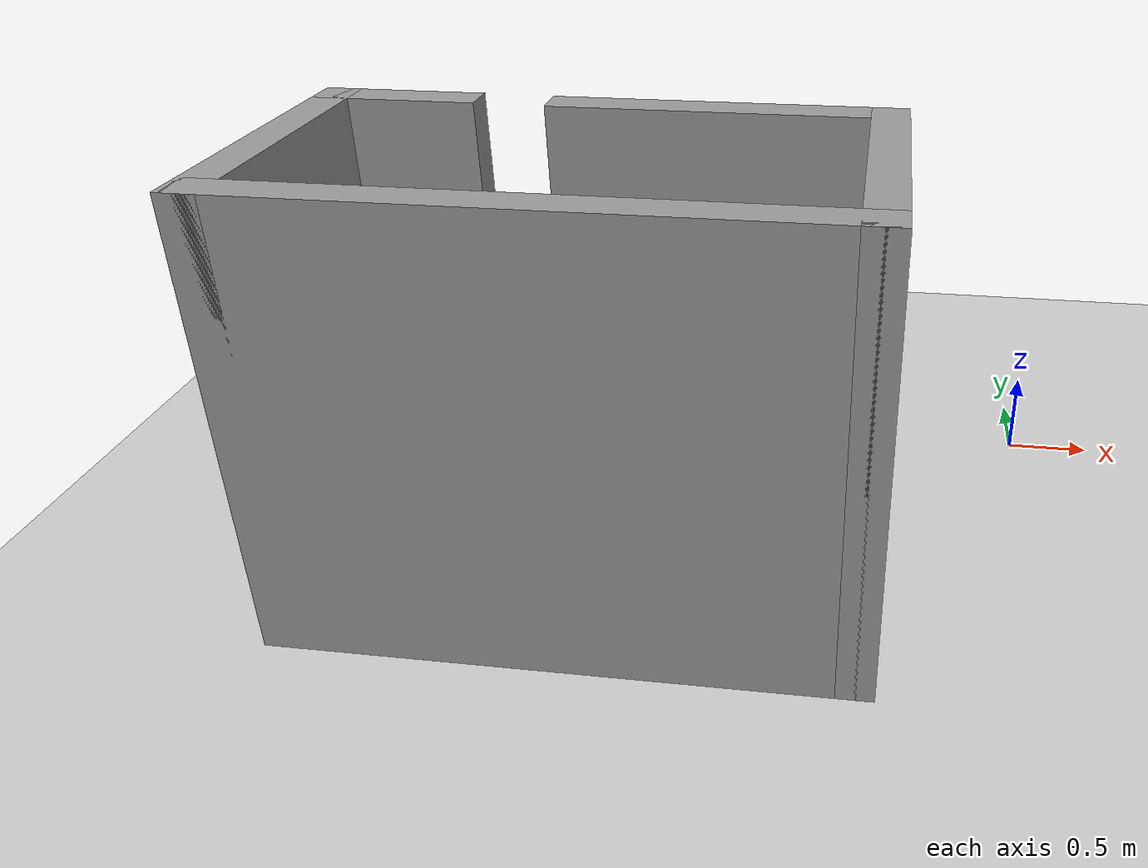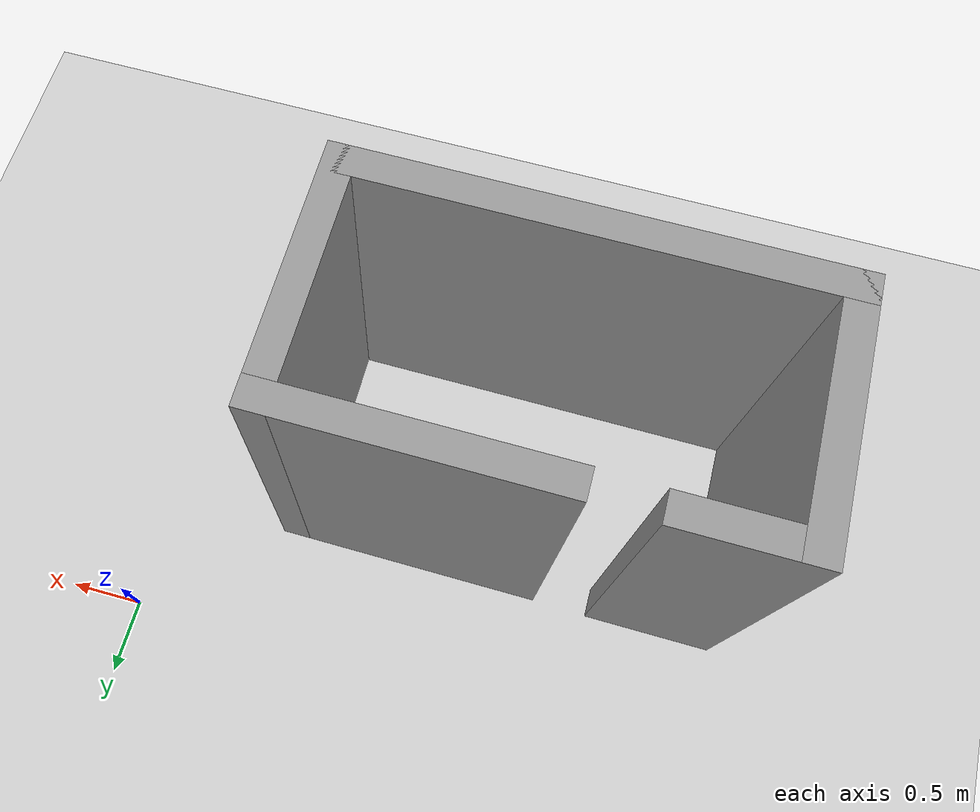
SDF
<sdf version="1.4">
 <world name="default">
  <light name="sun" type="directional">
   <pose>0 0 10 0 -0 0</pose>
   <diffuse>0.8 0.8 0.8 1</diffuse>
   <specular>0.2 0.2 0.2 1</specular>
   <attenuation>
    <range>1000</range>
    <constant>0.9</constant>
    <linear>0.01</linear>
    <quadratic>0.001</quadratic>
   </attenuation>
   <direction>-0.5 0.1 -0.9</direction>
  </light>
  <model name="ground_plane">
   <static>1</static>
   <link name="link">
    <collision name="collision">
     <geometry><plane><normal>0 0 1</normal><size>100 100</size></plane></geometry>
     <surface><friction><ode><mu>100</mu><mu2>50</mu2></ode></friction></surface>
    </collision>
    <visual name="visual">
     <cast_shadows>0</cast_shadows>
     <geometry><plane><normal>0 0 1</normal><size>100 100</size></plane></geometry>
     <material>
      <script><uri>file://media/materials/scripts/gazebo.material</uri><name>Gazebo/Grey</name></script>
     </material>
    </visual>
    <velocity_decay><linear>0</linear><angular>0</angular></velocity_decay>
   </link>
  </model>
  <physics type="ode">
   <max_step_size>0.001</max_step_size>
   <real_time_factor>1</real_time_factor>
   <real_time_update_rate>1000</real_time_update_rate>
   <gravity>0 0 -9.8</gravity>
  </physics>
  <scene><ambient>0.4 0.4 0.4 1</ambient><background>0.7 0.7 0.7 1</background><shadows>1</shadows></scene>
  <spherical_coordinates>
   <surface_model>EARTH_WGS84</surface_model>
   <latitude_deg>0</latitude_deg>
   <longitude_deg>0</longitude_deg>
   <elevation>0</elevation>
   <heading_deg>0</heading_deg>
  </spherical_coordinates>
  <model name="circle_buildingEditor">
   <link name="Wall_0">
    <collision name="Wall_0_Collision">
     <geometry><box><size>0.9 0.2 2.5</size></box></geometry>
     <pose>0 0 1.25 0 -0 0</pose>
    </collision>
    <visual name="Wall_0_Visual">
     <pose>0 0 1.25 0 -0 0</pose>
     <geometry><box><size>0.9 0.2 2.5</size></box></geometry>
     <material>
      <script><uri>file://media/materials/scripts/gazebo.material</uri><name>Gazebo/Grey</name></script>
     </material>
    </visual>
    <velocity_decay><linear>0</linear><angular>0</angular></velocity_decay>
    <pose>-3.6 -0.9 0 0 -0 3.14159</pose>
   </link>
   <link name="Wall_1">
    <collision name="Wall_1_Collision">
     <geometry><box><size>1.73 0.2 2.5</size></box></geometry>
     <pose>0 0 1.25 0 -0 0</pose>
    </collision>
    <visual name="Wall_1_Visual">
     <pose>0 0 1.25 0 -0 0</pose>
     <geometry><box><size>1.73 0.2 2.5</size></box></geometry>
     <material>
      <script><uri>file://media/materials/scripts/gazebo.material</uri><name>Gazebo/Grey</name></script>
     </material>
    </visual>
    <velocity_decay><linear>0</linear><angular>0</angular></velocity_decay>
    <pose>-3.95 -1.665 0 0 0 -1.5708</pose>
   </link>
   <link name="Wall_2">
    <collision name="Wall_2_Collision">
     <geometry><box><size>3.2 0.2 2.5</size></box></geometry>
     <pose>0 0 1.25 0 -0 0</pose>
    </collision>
    <visual name="Wall_2_Visual">
     <pose>0 0 1.25 0 -0 0</pose>
     <geometry><box><size>3.2 0.2 2.5</size></box></geometry>
     <material>
      <script><uri>file://media/materials/scripts/gazebo.material</uri><name>Gazebo/Grey</name></script>
     </material>
    </visual>
    <velocity_decay><linear>0</linear><angular>0</angular></velocity_decay>
    <pose>-2.45 -2.43 0 0 -0 0</pose>
   </link>
   <link name="Wall_3">
    <collision name="Wall_3_Collision">
     <geometry><box><size>1.72 0.2 2.5</size></box></geometry>
     <pose>0 0 1.25 0 -0 0</pose>
    </collision>
    <visual name="Wall_3_Visual">
     <pose>0 0 1.25 0 -0 0</pose>
     <geometry><box><size>1.72 0.2 2.5</size></box></geometry>
     <material>
      <script><uri>file://media/materials/scripts/gazebo.material</uri><name>Gazebo/Grey</name></script>
     </material>
    </visual>
    <velocity_decay><linear>0</linear><angular>0</angular></velocity_decay>
    <pose>-0.95 -1.67 0 0 -0 1.5708</pose>
   </link>
   <link name="Wall_4">
    <collision name="Wall_4_Collision">
     <geometry><box><size>1.91 0.2 2.5</size></box></geometry>
     <pose>0 0 1.25 0 -0 0</pose>
    </collision>
    <visual name="Wall_4_Visual">
     <pose>0 0 1.25 0 -0 0</pose>
     <geometry><box><size>1.91 0.2 2.5</size></box></geometry>
     <material>
      <script><uri>file://media/materials/scripts/gazebo.material</uri><name>Gazebo/Grey</name></script>
     </material>
    </visual>
    <velocity_decay><linear>0</linear><angular>0</angular></velocity_decay>
    <pose>-1.805 -0.91 0 0 -0 3.14159</pose>
   </link>
   <static>1</static>
  </model>
 </world>
</sdf>
